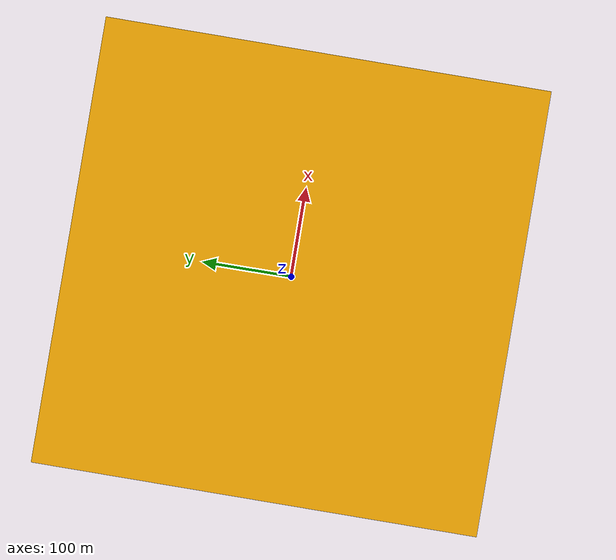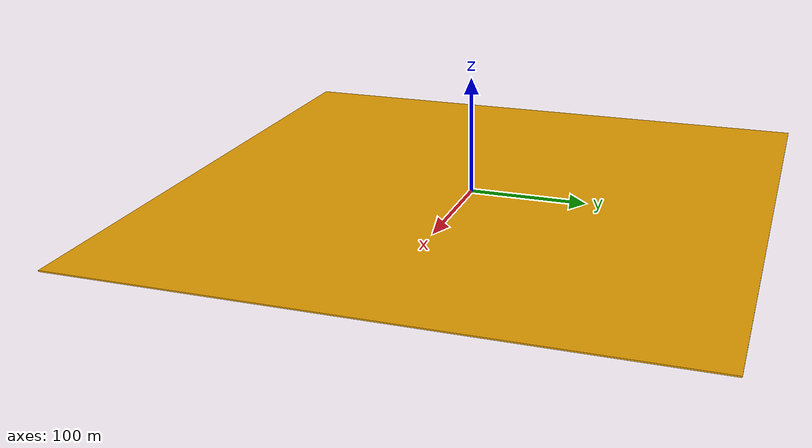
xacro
<?xml version="1.0"?>

<robot name="workspace_presenter_default" xmlns:xacro="https://www.ros.org/wiki/xacro">

    <material name="OA">
        <color rgba="0.101960784 0.42745098 0.588235294 0.333"/>
    </material>

    <gazebo reference="link_base">
        <turnGravityOff>true</turnGravityOff>
    </gazebo>
    <gazebo>
        <plugin name="gazebo_ros_template" filename="libgazebo_ros_template.so"/>
    </gazebo>

    <link name="link_base">
        <visual>
            <origin xyz="0.0 0.0 0.0"/>
            <geometry>
                <sphere radius="0.1"/>
            </geometry>
            <material name="OA"/>
        </visual>
        <visual>
            <origin xyz="0.0 0.0 0.0"/>
            <geometry>
                <mesh filename="package://wai_oa_gazebo/resources/reps/testlab/testlab.dae"/>
            </geometry>
        </visual>
        <inertial>
            <origin xyz="0.0 0.0 0.0"/>
            <mass value="1.0"/>
            <inertia  ixx="1.0" ixy="0.0"  ixz="0.0"  iyy="1.0"  iyz="0.0"  izz="1.0"/>
        </inertial>
    </link>

</robot>
